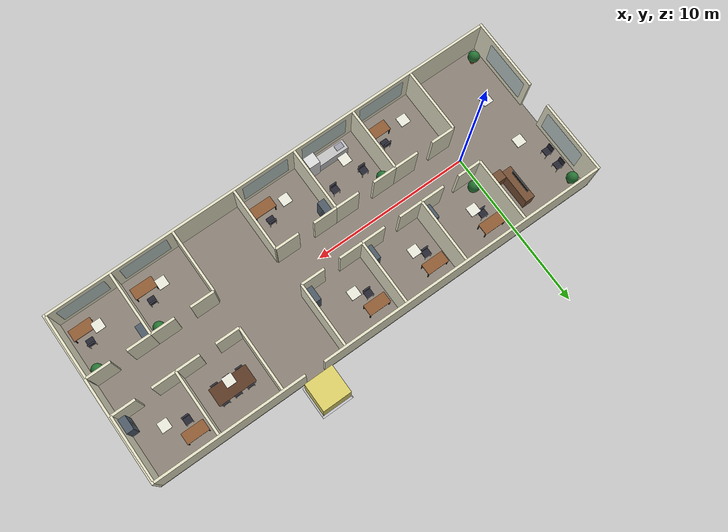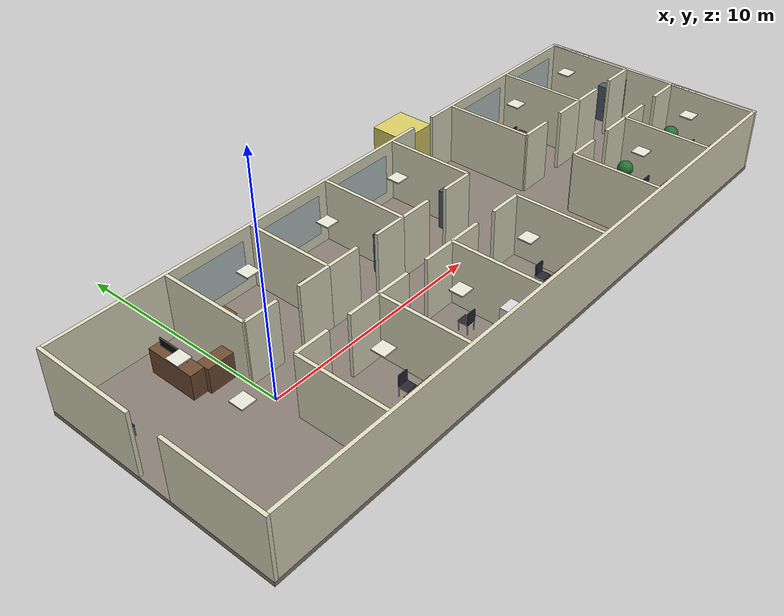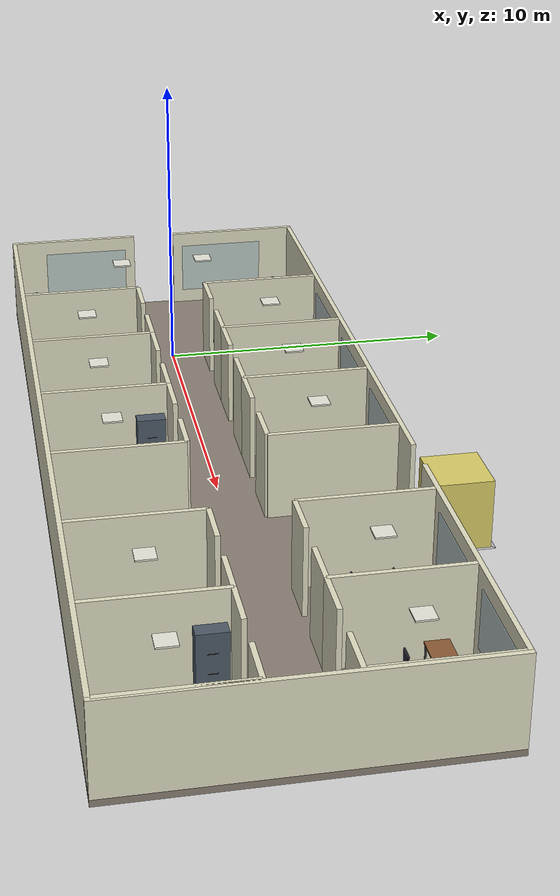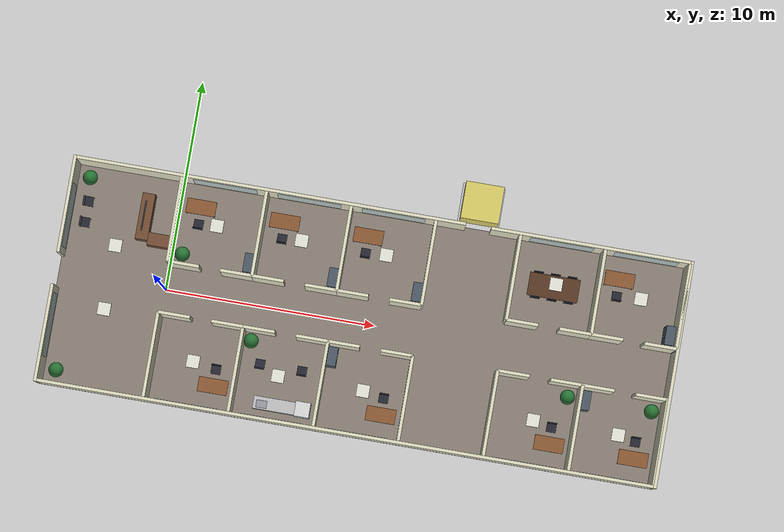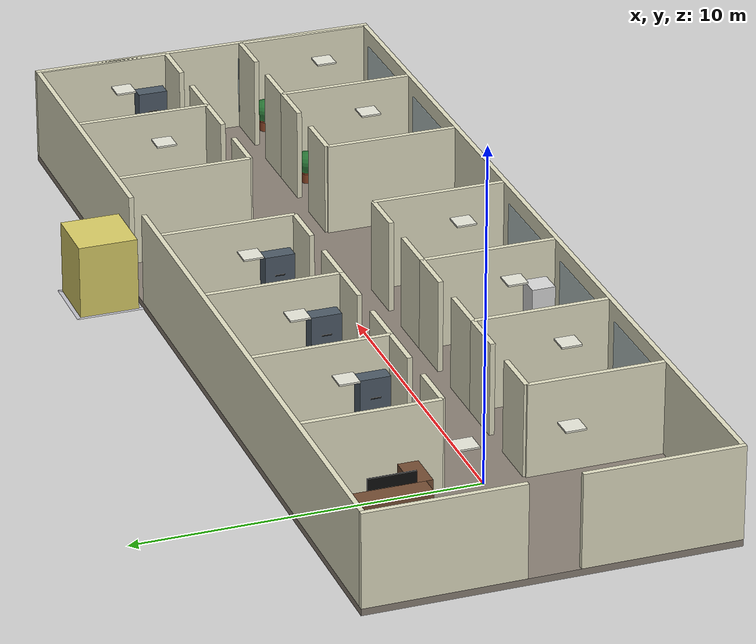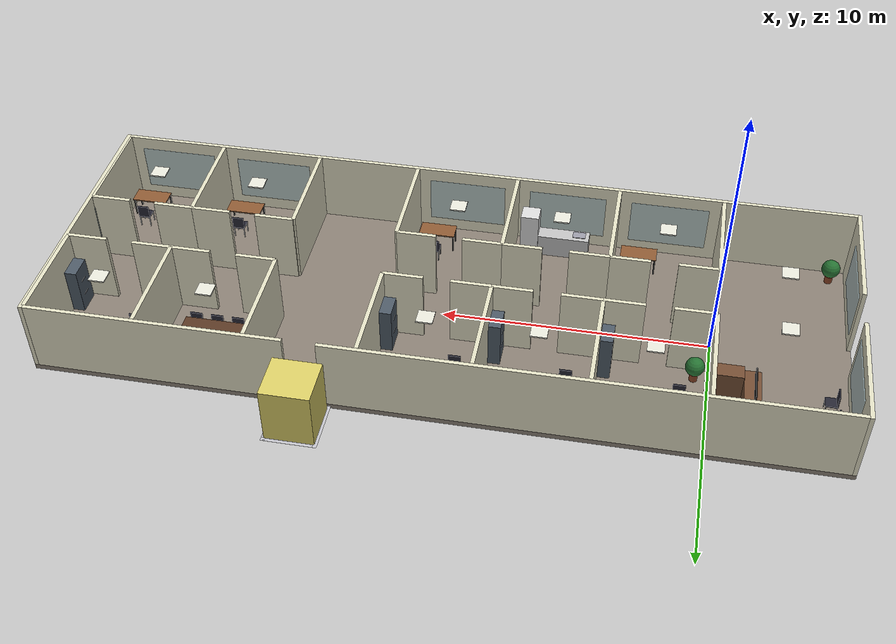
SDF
<?xml version="1.0"?>

<sdf version="1.10">

  <world name="office_world">

    <!-- PHYSICS                                           -->

    <physics name="default_physics" type="ode">

      <max_step_size>0.001</max_step_size>

      <real_time_factor>1.0</real_time_factor>

      <real_time_update_rate>1000</real_time_update_rate>

      <ode>
        <solver>
          <type>quick</type>
          <iters>150</iters>
          <sor>1.3</sor>
        </solver>
        <constraints>
          <cfm>0.0</cfm>
          <erp>0.2</erp>
          <contact_max_correcting_vel>100</contact_max_correcting_vel>
          <contact_surface_layer>0.001</contact_surface_layer>
        </constraints>
      </ode>

    </physics>

    <!-- REQUIRED SYSTEM PLUGINS                            -->

    <plugin
      filename="gz-sim-physics-system"
      name="gz::sim::systems::Physics">
    </plugin>

    <plugin
      filename="gz-sim-scene-broadcaster-system"
      name="gz::sim::systems::SceneBroadcaster">
    </plugin>

    <plugin
      filename="gz-sim-sensors-system"
      name="gz::sim::systems::Sensors">
      <render_engine>ogre2</render_engine>
    </plugin>

    <plugin
      filename="gz-sim-user-commands-system"
      name="gz::sim::systems::UserCommands">
    </plugin>

    <plugin
      filename="gz-sim-contact-system"
      name="gz::sim::systems::Contact">
    </plugin>

    <!-- GRAVITY                                           -->

    <gravity>0 0 -9.81</gravity>

    <!-- SCENE (rendering defaults for realistic look)      -->

    <scene>
      <ambient>0.6 0.6 0.6 1</ambient>
      <background>0.7 0.8 0.9 1</background>
      <shadows>true</shadows>
      <grid>false</grid>
    </scene>

    <!-- OFFICE FLOOR (structure + furniture, all nested)   -->

    <include>

      <uri>model://office_floor</uri>

      <name>office_floor</name>

      <pose>0 0 0 0 0 0</pose>

    </include>

    <!-- SUN (fill light through the windows)               -->

    <light
      name="sun"
      type="directional">

      <cast_shadows>true</cast_shadows>

      <pose>0 0 15 0 0 0</pose>

      <diffuse>1 1 1 1</diffuse>

      <specular>0.2 0.2 0.2 1</specular>

      <direction>-0.4 0.3 -1</direction>

    </light>

  </world>

</sdf>

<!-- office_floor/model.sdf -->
<!-- AUTO-GENERATED by scripts/generator/generate.py — do not hand-edit. -->

<sdf version="1.10">

  <model name="office_floor">

    <static>true</static>

    <link name="structure_link">

      <collision name="floor_0_floor_slab_collision">
        <pose>9.5000 0.0000 -0.1000 0.0000 -0.0000 0.0000</pose>
        <geometry>
          <box>
            <size>29.3000 10.7000 0.2000</size>
          </box>
        </geometry>
      </collision>
      <visual name="floor_0_floor_slab_visual">
        <pose>9.5000 0.0000 -0.1000 0.0000 -0.0000 0.0000</pose>
        <geometry>
          <box>
            <size>29.3000 10.7000 0.2000</size>
          </box>
        </geometry>
        <material>
          <ambient>0.5352970511190146 0.49679077429008417 0.45346837414708774 1</ambient>
          <diffuse>0.5352970511190146 0.49679077429008417 0.45346837414708774 1</diffuse>
          <specular>0.2 0.2 0.2 1</specular>
        </material>
      </visual>
      <collision name="floor_0_ext_wall_north_seg0_collision">
        <pose>4.2000 5.2750 1.4000 0.0000 -0.0000 0.0000</pose>
        <geometry>
          <box>
            <size>18.4000 0.1500 2.8000</size>
          </box>
        </geometry>
      </collision>
      <visual name="floor_0_ext_wall_north_seg0_visual">
        <pose>4.2000 5.2750 1.4000 0.0000 -0.0000 0.0000</pose>
        <geometry>
          <box>
            <size>18.4000 0.1500 2.8000</size>
          </box>
        </geometry>
        <material>
          <ambient>0.8777356642700563 0.866982555955925 0.7599139603924817 1</ambient>
          <diffuse>0.8777356642700563 0.866982555955925 0.7599139603924817 1</diffuse>
          <specular>0.2 0.2 0.2 1</specular>
        </material>
      </visual>
      <collision name="floor_0_ext_wall_north_seg1_collision">
        <pose>19.3000 5.2750 1.4000 0.0000 -0.0000 0.0000</pose>
        <geometry>
          <box>
            <size>9.4000 0.1500 2.8000</size>
          </box>
        </geometry>
      </collision>
      <visual name="floor_0_ext_wall_north_seg1_visual">
        <pose>19.3000 5.2750 1.4000 0.0000 -0.0000 0.0000</pose>
        <geometry>
          <box>
            <size>9.4000 0.1500 2.8000</size>
          </box>
        </geometry>
        <material>
          <ambient>0.8777356642700563 0.866982555955925 0.7599139603924817 1</ambient>
          <diffuse>0.8777356642700563 0.866982555955925 0.7599139603924817 1</diffuse>
          <specular>0.2 0.2 0.2 1</specular>
        </material>
      </visual>
      <visual name="floor_0_ext_wall_north_window_0_visual">
        <pose>2.0000 5.2000 1.4000 0.0000 -0.0000 0.0000</pose>
        <geometry>
          <box>
            <size>3.0000 0.0500 1.8000</size>
          </box>
        </geometry>
        <material>
          <ambient>0.6 0.75 0.85 1</ambient>
          <diffuse>0.6 0.75 0.85 1</diffuse>
          <specular>0.8 0.8 0.8 1</specular>
        </material>
        <transparency>0.5500</transparency>
      </visual>
      <visual name="floor_0_ext_wall_north_window_1_visual">
        <pose>6.0000 5.2000 1.4000 0.0000 -0.0000 0.0000</pose>
        <geometry>
          <box>
            <size>3.0000 0.0500 1.8000</size>
          </box>
        </geometry>
        <material>
          <ambient>0.6 0.75 0.85 1</ambient>
          <diffuse>0.6 0.75 0.85 1</diffuse>
          <specular>0.8 0.8 0.8 1</specular>
        </material>
        <transparency>0.5500</transparency>
      </visual>
      <visual name="floor_0_ext_wall_north_window_2_visual">
        <pose>10.0000 5.2000 1.4000 0.0000 -0.0000 0.0000</pose>
        <geometry>
          <box>
            <size>3.0000 0.0500 1.8000</size>
          </box>
        </geometry>
        <material>
          <ambient>0.6 0.75 0.85 1</ambient>
          <diffuse>0.6 0.75 0.85 1</diffuse>
          <specular>0.8 0.8 0.8 1</specular>
        </material>
        <transparency>0.5500</transparency>
      </visual>
      <visual name="floor_0_ext_wall_north_window_3_visual">
        <pose>18.0000 5.2000 1.4000 0.0000 -0.0000 0.0000</pose>
        <geometry>
          <box>
            <size>3.0000 0.0500 1.8000</size>
          </box>
        </geometry>
        <material>
          <ambient>0.6 0.75 0.85 1</ambient>
          <diffuse>0.6 0.75 0.85 1</diffuse>
          <specular>0.8 0.8 0.8 1</specular>
        </material>
        <transparency>0.5500</transparency>
      </visual>
      <visual name="floor_0_ext_wall_north_window_4_visual">
        <pose>22.0000 5.2000 1.4000 0.0000 -0.0000 0.0000</pose>
        <geometry>
          <box>
            <size>3.0000 0.0500 1.8000</size>
          </box>
        </geometry>
        <material>
          <ambient>0.6 0.75 0.85 1</ambient>
          <diffuse>0.6 0.75 0.85 1</diffuse>
          <specular>0.8 0.8 0.8 1</specular>
        </material>
        <transparency>0.5500</transparency>
      </visual>
      <collision name="floor_0_ext_wall_south_collision">
        <pose>9.5000 -5.2750 1.4000 0.0000 -0.0000 0.0000</pose>
        <geometry>
          <box>
            <size>29.0000 0.1500 2.8000</size>
          </box>
        </geometry>
      </collision>
      <visual name="floor_0_ext_wall_south_visual">
        <pose>9.5000 -5.2750 1.4000 0.0000 -0.0000 0.0000</pose>
        <geometry>
          <box>
            <size>29.0000 0.1500 2.8000</size>
          </box>
        </geometry>
        <material>
          <ambient>0.8777356642700563 0.866982555955925 0.7599139603924817 1</ambient>
          <diffuse>0.8777356642700563 0.866982555955925 0.7599139603924817 1</diffuse>
          <specular>0.2 0.2 0.2 1</specular>
        </material>
      </visual>
      <visual name="floor_0_ext_wall_south_window_0_visual">
        <pose>2.0000 -5.2000 1.4000 0.0000 -0.0000 0.0000</pose>
        <geometry>
          <box>
            <size>3.0000 0.0500 1.8000</size>
          </box>
        </geometry>
        <material>
          <ambient>0.6 0.75 0.85 1</ambient>
          <diffuse>0.6 0.75 0.85 1</diffuse>
          <specular>0.8 0.8 0.8 1</specular>
        </material>
        <transparency>0.5500</transparency>
      </visual>
      <visual name="floor_0_ext_wall_south_window_1_visual">
        <pose>6.0000 -5.2000 1.4000 0.0000 -0.0000 0.0000</pose>
        <geometry>
          <box>
            <size>3.0000 0.0500 1.8000</size>
          </box>
        </geometry>
        <material>
          <ambient>0.6 0.75 0.85 1</ambient>
          <diffuse>0.6 0.75 0.85 1</diffuse>
          <specular>0.8 0.8 0.8 1</specular>
        </material>
        <transparency>0.5500</transparency>
      </visual>
      <visual name="floor_0_ext_wall_south_window_2_visual">
        <pose>10.0000 -5.2000 1.4000 0.0000 -0.0000 0.0000</pose>
        <geometry>
          <box>
            <size>3.0000 0.0500 1.8000</size>
          </box>
        </geometry>
        <material>
          <ambient>0.6 0.75 0.85 1</ambient>
          <diffuse>0.6 0.75 0.85 1</diffuse>
          <specular>0.8 0.8 0.8 1</specular>
        </material>
        <transparency>0.5500</transparency>
      </visual>
      <visual name="floor_0_ext_wall_south_window_3_visual">
        <pose>18.0000 -5.2000 1.4000 0.0000 -0.0000 0.0000</pose>
        <geometry>
          <box>
            <size>3.0000 0.0500 1.8000</size>
          </box>
        </geometry>
        <material>
          <ambient>0.6 0.75 0.85 1</ambient>
          <diffuse>0.6 0.75 0.85 1</diffuse>
          <specular>0.8 0.8 0.8 1</specular>
        </material>
        <transparency>0.5500</transparency>
      </visual>
      <visual name="floor_0_ext_wall_south_window_4_visual">
        <pose>22.0000 -5.2000 1.4000 0.0000 -0.0000 0.0000</pose>
        <geometry>
          <box>
            <size>3.0000 0.0500 1.8000</size>
          </box>
        </geometry>
        <material>
          <ambient>0.6 0.75 0.85 1</ambient>
          <diffuse>0.6 0.75 0.85 1</diffuse>
          <specular>0.8 0.8 0.8 1</specular>
        </material>
        <transparency>0.5500</transparency>
      </visual>
      <collision name="floor_0_ext_wall_west_seg0_collision">
        <pose>-5.0750 -3.0500 1.4000 0.0000 -0.0000 0.0000</pose>
        <geometry>
          <box>
            <size>0.1500 4.6000 2.8000</size>
          </box>
        </geometry>
      </collision>
      <visual name="floor_0_ext_wall_west_seg0_visual">
        <pose>-5.0750 -3.0500 1.4000 0.0000 -0.0000 0.0000</pose>
        <geometry>
          <box>
            <size>0.1500 4.6000 2.8000</size>
          </box>
        </geometry>
        <material>
          <ambient>0.8777356642700563 0.866982555955925 0.7599139603924817 1</ambient>
          <diffuse>0.8777356642700563 0.866982555955925 0.7599139603924817 1</diffuse>
          <specular>0.2 0.2 0.2 1</specular>
        </material>
      </visual>
      <collision name="floor_0_ext_wall_west_seg1_collision">
        <pose>-5.0750 3.0500 1.4000 0.0000 -0.0000 0.0000</pose>
        <geometry>
          <box>
            <size>0.1500 4.6000 2.8000</size>
          </box>
        </geometry>
      </collision>
      <visual name="floor_0_ext_wall_west_seg1_visual">
        <pose>-5.0750 3.0500 1.4000 0.0000 -0.0000 0.0000</pose>
        <geometry>
          <box>
            <size>0.1500 4.6000 2.8000</size>
          </box>
        </geometry>
        <material>
          <ambient>0.8777356642700563 0.866982555955925 0.7599139603924817 1</ambient>
          <diffuse>0.8777356642700563 0.866982555955925 0.7599139603924817 1</diffuse>
          <specular>0.2 0.2 0.2 1</specular>
        </material>
      </visual>
      <visual name="floor_0_ext_wall_west_window_0_visual">
        <pose>-5.0000 2.6000 1.4000 0.0000 -0.0000 0.0000</pose>
        <geometry>
          <box>
            <size>0.0500 3.0000 1.8000</size>
          </box>
        </geometry>
        <material>
          <ambient>0.6 0.75 0.85 1</ambient>
          <diffuse>0.6 0.75 0.85 1</diffuse>
          <specular>0.8 0.8 0.8 1</specular>
        </material>
        <transparency>0.5500</transparency>
      </visual>
      <visual name="floor_0_ext_wall_west_window_1_visual">
        <pose>-5.0000 -2.6000 1.4000 0.0000 -0.0000 0.0000</pose>
        <geometry>
          <box>
            <size>0.0500 3.0000 1.8000</size>
          </box>
        </geometry>
        <material>
          <ambient>0.6 0.75 0.85 1</ambient>
          <diffuse>0.6 0.75 0.85 1</diffuse>
          <specular>0.8 0.8 0.8 1</specular>
        </material>
        <transparency>0.5500</transparency>
      </visual>
      <collision name="floor_0_ext_wall_east_collision">
        <pose>24.0750 0.0000 1.4000 0.0000 -0.0000 0.0000</pose>
        <geometry>
          <box>
            <size>0.1500 10.7000 2.8000</size>
          </box>
        </geometry>
      </collision>
      <visual name="floor_0_ext_wall_east_visual">
        <pose>24.0750 0.0000 1.4000 0.0000 -0.0000 0.0000</pose>
        <geometry>
          <box>
            <size>0.1500 10.7000 2.8000</size>
          </box>
        </geometry>
        <material>
          <ambient>0.8777356642700563 0.866982555955925 0.7599139603924817 1</ambient>
          <diffuse>0.8777356642700563 0.866982555955925 0.7599139603924817 1</diffuse>
          <specular>0.2 0.2 0.2 1</specular>
        </material>
      </visual>
      <visual name="floor_0_ext_wall_east_window_0_visual">
        <pose>24.0000 2.6000 1.4000 0.0000 -0.0000 0.0000</pose>
        <geometry>
          <box>
            <size>0.0500 3.0000 1.8000</size>
          </box>
        </geometry>
        <material>
          <ambient>0.6 0.75 0.85 1</ambient>
          <diffuse>0.6 0.75 0.85 1</diffuse>
          <specular>0.8 0.8 0.8 1</specular>
        </material>
        <transparency>0.5500</transparency>
      </visual>
      <visual name="floor_0_ext_wall_east_window_1_visual">
        <pose>24.0000 -2.6000 1.4000 0.0000 -0.0000 0.0000</pose>
        <geometry>
          <box>
            <size>0.0500 3.0000 1.8000</size>
          </box>
        </geometry>
        <material>
          <ambient>0.6 0.75 0.85 1</ambient>
          <diffuse>0.6 0.75 0.85 1</diffuse>
          <specular>0.8 0.8 0.8 1</specular>
        </material>
        <transparency>0.5500</transparency>
      </visual>
      <collision name="floor_0_corridor_wall_n_0_seg0_collision">
        <pose>0.7500 1.2000 1.4000 0.0000 -0.0000 0.0000</pose>
        <geometry>
          <box>
            <size>1.5000 0.1500 2.8000</size>
          </box>
        </geometry>
      </collision>
      <visual name="floor_0_corridor_wall_n_0_seg0_visual">
        <pose>0.7500 1.2000 1.4000 0.0000 -0.0000 0.0000</pose>
        <geometry>
          <box>
            <size>1.5000 0.1500 2.8000</size>
          </box>
        </geometry>
        <material>
          <ambient>0.8777356642700563 0.866982555955925 0.7599139603924817 1</ambient>
          <diffuse>0.8777356642700563 0.866982555955925 0.7599139603924817 1</diffuse>
          <specular>0.2 0.2 0.2 1</specular>
        </material>
      </visual>
      <collision name="floor_0_corridor_wall_n_0_seg1_collision">
        <pose>3.2500 1.2000 1.4000 0.0000 -0.0000 0.0000</pose>
        <geometry>
          <box>
            <size>1.5000 0.1500 2.8000</size>
          </box>
        </geometry>
      </collision>
      <visual name="floor_0_corridor_wall_n_0_seg1_visual">
        <pose>3.2500 1.2000 1.4000 0.0000 -0.0000 0.0000</pose>
        <geometry>
          <box>
            <size>1.5000 0.1500 2.8000</size>
          </box>
        </geometry>
        <material>
          <ambient>0.8777356642700563 0.866982555955925 0.7599139603924817 1</ambient>
          <diffuse>0.8777356642700563 0.866982555955925 0.7599139603924817 1</diffuse>
          <specular>0.2 0.2 0.2 1</specular>
        </material>
      </visual>
      <collision name="floor_0_corridor_wall_s_0_seg0_collision">
        <pose>0.7500 -1.2000 1.4000 0.0000 -0.0000 0.0000</pose>
        <geometry>
          <box>
            <size>1.5000 0.1500 2.8000</size>
          </box>
        </geometry>
      </collision>
      <visual name="floor_0_corridor_wall_s_0_seg0_visual">
        <pose>0.7500 -1.2000 1.4000 0.0000 -0.0000 0.0000</pose>
        <geometry>
          <box>
            <size>1.5000 0.1500 2.8000</size>
          </box>
        </geometry>
        <material>
          <ambient>0.8777356642700563 0.866982555955925 0.7599139603924817 1</ambient>
          <diffuse>0.8777356642700563 0.866982555955925 0.7599139603924817 1</diffuse>
          <specular>0.2 0.2 0.2 1</specular>
        </material>
      </visual>
      <collision name="floor_0_corridor_wall_s_0_seg1_collision">
        <pose>3.2500 -1.2000 1.4000 0.0000 -0.0000 0.0000</pose>
        <geometry>
          <box>
            <size>1.5000 0.1500 2.8000</size>
          </box>
        </geometry>
      </collision>
      <visual name="floor_0_corridor_wall_s_0_seg1_visual">
        <pose>3.2500 -1.2000 1.4000 0.0000 -0.0000 0.0000</pose>
        <geometry>
          <box>
            <size>1.5000 0.1500 2.8000</size>
          </box>
        </geometry>
        <material>
          <ambient>0.8777356642700563 0.866982555955925 0.7599139603924817 1</ambient>
          <diffuse>0.8777356642700563 0.866982555955925 0.7599139603924817 1</diffuse>
          <specular>0.2 0.2 0.2 1</specular>
        </material>
      </visual>
      <collision name="floor_0_corridor_wall_n_1_seg0_collision">
        <pose>4.7500 1.2000 1.4000 0.0000 -0.0000 0.0000</pose>
        <geometry>
          <box>
            <size>1.5000 0.1500 2.8000</size>
          </box>
        </geometry>
      </collision>
      <visual name="floor_0_corridor_wall_n_1_seg0_visual">
        <pose>4.7500 1.2000 1.4000 0.0000 -0.0000 0.0000</pose>
        <geometry>
          <box>
            <size>1.5000 0.1500 2.8000</size>
          </box>
        </geometry>
        <material>
          <ambient>0.8777356642700563 0.866982555955925 0.7599139603924817 1</ambient>
          <diffuse>0.8777356642700563 0.866982555955925 0.7599139603924817 1</diffuse>
          <specular>0.2 0.2 0.2 1</specular>
        </material>
      </visual>
      <collision name="floor_0_corridor_wall_n_1_seg1_collision">
        <pose>7.2500 1.2000 1.4000 0.0000 -0.0000 0.0000</pose>
        <geometry>
          <box>
            <size>1.5000 0.1500 2.8000</size>
          </box>
        </geometry>
      </collision>
      <visual name="floor_0_corridor_wall_n_1_seg1_visual">
        <pose>7.2500 1.2000 1.4000 0.0000 -0.0000 0.0000</pose>
        <geometry>
          <box>
            <size>1.5000 0.1500 2.8000</size>
          </box>
        </geometry>
        <material>
          <ambient>0.8777356642700563 0.866982555955925 0.7599139603924817 1</ambient>
          <diffuse>0.8777356642700563 0.866982555955925 0.7599139603924817 1</diffuse>
          <specular>0.2 0.2 0.2 1</specular>
        </material>
      </visual>
      <collision name="floor_0_corridor_wall_s_1_seg0_collision">
        <pose>4.7500 -1.2000 1.4000 0.0000 -0.0000 0.0000</pose>
        <geometry>
          <box>
            <size>1.5000 0.1500 2.8000</size>
          </box>
        </geometry>
      </collision>
      <visual name="floor_0_corridor_wall_s_1_seg0_visual">
        <pose>4.7500 -1.2000 1.4000 0.0000 -0.0000 0.0000</pose>
        <geometry>
          <box>
            <size>1.5000 0.1500 2.8000</size>
          </box>
        </geometry>
        <material>
          <ambient>0.8777356642700563 0.866982555955925 0.7599139603924817 1</ambient>
          <diffuse>0.8777356642700563 0.866982555955925 0.7599139603924817 1</diffuse>
          <specular>0.2 0.2 0.2 1</specular>
        </material>
      </visual>
      <collision name="floor_0_corridor_wall_s_1_seg1_collision">
        <pose>7.2500 -1.2000 1.4000 0.0000 -0.0000 0.0000</pose>
        <geometry>
          <box>
            <size>1.5000 0.1500 2.8000</size>
          </box>
        </geometry>
      </collision>
      <visual name="floor_0_corridor_wall_s_1_seg1_visual">
        <pose>7.2500 -1.2000 1.4000 0.0000 -0.0000 0.0000</pose>
        <geometry>
          <box>
            <size>1.5000 0.1500 2.8000</size>
          </box>
        </geometry>
        <material>
          <ambient>0.8777356642700563 0.866982555955925 0.7599139603924817 1</ambient>
          <diffuse>0.8777356642700563 0.866982555955925 0.7599139603924817 1</diffuse>
          <specular>0.2 0.2 0.2 1</specular>
        </material>
      </visual>
      <collision name="floor_0_corridor_wall_n_2_seg0_collision">
        <pose>8.7500 1.2000 1.4000 0.0000 -0.0000 0.0000</pose>
        <geometry>
          <box>
            <size>1.5000 0.1500 2.8000</size>
          </box>
        </geometry>
      </collision>
      <visual name="floor_0_corridor_wall_n_2_seg0_visual">
        <pose>8.7500 1.2000 1.4000 0.0000 -0.0000 0.0000</pose>
        <geometry>
          <box>
            <size>1.5000 0.1500 2.8000</size>
          </box>
        </geometry>
        <material>
          <ambient>0.8777356642700563 0.866982555955925 0.7599139603924817 1</ambient>
          <diffuse>0.8777356642700563 0.866982555955925 0.7599139603924817 1</diffuse>
          <specular>0.2 0.2 0.2 1</specular>
        </material>
      </visual>
      <collision name="floor_0_corridor_wall_n_2_seg1_collision">
        <pose>11.2500 1.2000 1.4000 0.0000 -0.0000 0.0000</pose>
        <geometry>
          <box>
            <size>1.5000 0.1500 2.8000</size>
          </box>
        </geometry>
      </collision>
      <visual name="floor_0_corridor_wall_n_2_seg1_visual">
        <pose>11.2500 1.2000 1.4000 0.0000 -0.0000 0.0000</pose>
        <geometry>
          <box>
            <size>1.5000 0.1500 2.8000</size>
          </box>
        </geometry>
        <material>
          <ambient>0.8777356642700563 0.866982555955925 0.7599139603924817 1</ambient>
          <diffuse>0.8777356642700563 0.866982555955925 0.7599139603924817 1</diffuse>
          <specular>0.2 0.2 0.2 1</specular>
        </material>
      </visual>
      <collision name="floor_0_corridor_wall_s_2_seg0_collision">
        <pose>8.7500 -1.2000 1.4000 0.0000 -0.0000 0.0000</pose>
        <geometry>
          <box>
            <size>1.5000 0.1500 2.8000</size>
          </box>
        </geometry>
      </collision>
      <visual name="floor_0_corridor_wall_s_2_seg0_visual">
        <pose>8.7500 -1.2000 1.4000 0.0000 -0.0000 0.0000</pose>
        <geometry>
          <box>
            <size>1.5000 0.1500 2.8000</size>
          </box>
        </geometry>
        <material>
          <ambient>0.8777356642700563 0.866982555955925 0.7599139603924817 1</ambient>
          <diffuse>0.8777356642700563 0.866982555955925 0.7599139603924817 1</diffuse>
          <specular>0.2 0.2 0.2 1</specular>
        </material>
      </visual>
      <collision name="floor_0_corridor_wall_s_2_seg1_collision">
        <pose>11.2500 -1.2000 1.4000 0.0000 -0.0000 0.0000</pose>
        <geometry>
          <box>
            <size>1.5000 0.1500 2.8000</size>
          </box>
        </geometry>
      </collision>
      <visual name="floor_0_corridor_wall_s_2_seg1_visual">
        <pose>11.2500 -1.2000 1.4000 0.0000 -0.0000 0.0000</pose>
        <geometry>
          <box>
            <size>1.5000 0.1500 2.8000</size>
          </box>
        </geometry>
        <material>
          <ambient>0.8777356642700563 0.866982555955925 0.7599139603924817 1</ambient>
          <diffuse>0.8777356642700563 0.866982555955925 0.7599139603924817 1</diffuse>
          <specular>0.2 0.2 0.2 1</specular>
        </material>
      </visual>
      <collision name="floor_0_corridor_wall_n_4_seg0_collision">
        <pose>16.7500 1.2000 1.4000 0.0000 -0.0000 0.0000</pose>
        <geometry>
          <box>
            <size>1.5000 0.1500 2.8000</size>
          </box>
        </geometry>
      </collision>
      <visual name="floor_0_corridor_wall_n_4_seg0_visual">
        <pose>16.7500 1.2000 1.4000 0.0000 -0.0000 0.0000</pose>
        <geometry>
          <box>
            <size>1.5000 0.1500 2.8000</size>
          </box>
        </geometry>
        <material>
          <ambient>0.8777356642700563 0.866982555955925 0.7599139603924817 1</ambient>
          <diffuse>0.8777356642700563 0.866982555955925 0.7599139603924817 1</diffuse>
          <specular>0.2 0.2 0.2 1</specular>
        </material>
      </visual>
      <collision name="floor_0_corridor_wall_n_4_seg1_collision">
        <pose>19.2500 1.2000 1.4000 0.0000 -0.0000 0.0000</pose>
        <geometry>
          <box>
            <size>1.5000 0.1500 2.8000</size>
          </box>
        </geometry>
      </collision>
      <visual name="floor_0_corridor_wall_n_4_seg1_visual">
        <pose>19.2500 1.2000 1.4000 0.0000 -0.0000 0.0000</pose>
        <geometry>
          <box>
            <size>1.5000 0.1500 2.8000</size>
          </box>
        </geometry>
        <material>
          <ambient>0.8777356642700563 0.866982555955925 0.7599139603924817 1</ambient>
          <diffuse>0.8777356642700563 0.866982555955925 0.7599139603924817 1</diffuse>
          <specular>0.2 0.2 0.2 1</specular>
        </material>
      </visual>
      <collision name="floor_0_corridor_wall_s_4_seg0_collision">
        <pose>16.7500 -1.2000 1.4000 0.0000 -0.0000 0.0000</pose>
        <geometry>
          <box>
            <size>1.5000 0.1500 2.8000</size>
          </box>
        </geometry>
      </collision>
      <visual name="floor_0_corridor_wall_s_4_seg0_visual">
        <pose>16.7500 -1.2000 1.4000 0.0000 -0.0000 0.0000</pose>
        <geometry>
          <box>
            <size>1.5000 0.1500 2.8000</size>
          </box>
        </geometry>
        <material>
          <ambient>0.8777356642700563 0.866982555955925 0.7599139603924817 1</ambient>
          <diffuse>0.8777356642700563 0.866982555955925 0.7599139603924817 1</diffuse>
          <specular>0.2 0.2 0.2 1</specular>
        </material>
      </visual>
      <collision name="floor_0_corridor_wall_s_4_seg1_collision">
        <pose>19.2500 -1.2000 1.4000 0.0000 -0.0000 0.0000</pose>
        <geometry>
          <box>
            <size>1.5000 0.1500 2.8000</size>
          </box>
        </geometry>
      </collision>
      <visual name="floor_0_corridor_wall_s_4_seg1_visual">
        <pose>19.2500 -1.2000 1.4000 0.0000 -0.0000 0.0000</pose>
        <geometry>
          <box>
            <size>1.5000 0.1500 2.8000</size>
          </box>
        </geometry>
        <material>
          <ambient>0.8777356642700563 0.866982555955925 0.7599139603924817 1</ambient>
          <diffuse>0.8777356642700563 0.866982555955925 0.7599139603924817 1</diffuse>
          <specular>0.2 0.2 0.2 1</specular>
        </material>
      </visual>
      <collision name="floor_0_corridor_wall_n_5_seg0_collision">
        <pose>20.7500 1.2000 1.4000 0.0000 -0.0000 0.0000</pose>
        <geometry>
          <box>
            <size>1.5000 0.1500 2.8000</size>
          </box>
        </geometry>
      </collision>
      <visual name="floor_0_corridor_wall_n_5_seg0_visual">
        <pose>20.7500 1.2000 1.4000 0.0000 -0.0000 0.0000</pose>
        <geometry>
          <box>
            <size>1.5000 0.1500 2.8000</size>
          </box>
        </geometry>
        <material>
          <ambient>0.8777356642700563 0.866982555955925 0.7599139603924817 1</ambient>
          <diffuse>0.8777356642700563 0.866982555955925 0.7599139603924817 1</diffuse>
          <specular>0.2 0.2 0.2 1</specular>
        </material>
      </visual>
      <collision name="floor_0_corridor_wall_n_5_seg1_collision">
        <pose>23.2500 1.2000 1.4000 0.0000 -0.0000 0.0000</pose>
        <geometry>
          <box>
            <size>1.5000 0.1500 2.8000</size>
          </box>
        </geometry>
      </collision>
      <visual name="floor_0_corridor_wall_n_5_seg1_visual">
        <pose>23.2500 1.2000 1.4000 0.0000 -0.0000 0.0000</pose>
        <geometry>
          <box>
            <size>1.5000 0.1500 2.8000</size>
          </box>
        </geometry>
        <material>
          <ambient>0.8777356642700563 0.866982555955925 0.7599139603924817 1</ambient>
          <diffuse>0.8777356642700563 0.866982555955925 0.7599139603924817 1</diffuse>
          <specular>0.2 0.2 0.2 1</specular>
        </material>
      </visual>
      <collision name="floor_0_corridor_wall_s_5_seg0_collision">
        <pose>20.7500 -1.2000 1.4000 0.0000 -0.0000 0.0000</pose>
        <geometry>
          <box>
            <size>1.5000 0.1500 2.8000</size>
          </box>
        </geometry>
      </collision>
      <visual name="floor_0_corridor_wall_s_5_seg0_visual">
        <pose>20.7500 -1.2000 1.4000 0.0000 -0.0000 0.0000</pose>
        <geometry>
          <box>
            <size>1.5000 0.1500 2.8000</size>
          </box>
        </geometry>
        <material>
          <ambient>0.8777356642700563 0.866982555955925 0.7599139603924817 1</ambient>
          <diffuse>0.8777356642700563 0.866982555955925 0.7599139603924817 1</diffuse>
          <specular>0.2 0.2 0.2 1</specular>
        </material>
      </visual>
      <collision name="floor_0_corridor_wall_s_5_seg1_collision">
        <pose>23.2500 -1.2000 1.4000 0.0000 -0.0000 0.0000</pose>
        <geometry>
          <box>
            <size>1.5000 0.1500 2.8000</size>
          </box>
        </geometry>
      </collision>
      <visual name="floor_0_corridor_wall_s_5_seg1_visual">
        <pose>23.2500 -1.2000 1.4000 0.0000 -0.0000 0.0000</pose>
        <geometry>
          <box>
            <size>1.5000 0.1500 2.8000</size>
          </box>
        </geometry>
        <material>
          <ambient>0.8777356642700563 0.866982555955925 0.7599139603924817 1</ambient>
          <diffuse>0.8777356642700563 0.866982555955925 0.7599139603924817 1</diffuse>
          <specular>0.2 0.2 0.2 1</specular>
        </material>
      </visual>
      <collision name="floor_0_partition_n_0_collision">
        <pose>0.0000 3.2000 1.4000 0.0000 -0.0000 0.0000</pose>
        <geometry>
          <box>
            <size>0.1500 4.0000 2.8000</size>
          </box>
        </geometry>
      </collision>
      <visual name="floor_0_partition_n_0_visual">
        <pose>0.0000 3.2000 1.4000 0.0000 -0.0000 0.0000</pose>
        <geometry>
          <box>
            <size>0.1500 4.0000 2.8000</size>
          </box>
        </geometry>
        <material>
          <ambient>0.8777356642700563 0.866982555955925 0.7599139603924817 1</ambient>
          <diffuse>0.8777356642700563 0.866982555955925 0.7599139603924817 1</diffuse>
          <specular>0.2 0.2 0.2 1</specular>
        </material>
      </visual>
      <collision name="floor_0_partition_s_0_collision">
        <pose>0.0000 -3.2000 1.4000 0.0000 -0.0000 0.0000</pose>
        <geometry>
          <box>
            <size>0.1500 4.0000 2.8000</size>
          </box>
        </geometry>
      </collision>
      <visual name="floor_0_partition_s_0_visual">
        <pose>0.0000 -3.2000 1.4000 0.0000 -0.0000 0.0000</pose>
        <geometry>
          <box>
            <size>0.1500 4.0000 2.8000</size>
          </box>
        </geometry>
        <material>
          <ambient>0.8777356642700563 0.866982555955925 0.7599139603924817 1</ambient>
          <diffuse>0.8777356642700563 0.866982555955925 0.7599139603924817 1</diffuse>
          <specular>0.2 0.2 0.2 1</specular>
        </material>
      </visual>
      <collision name="floor_0_partition_n_1_collision">
        <pose>4.0000 3.2000 1.4000 0.0000 -0.0000 0.0000</pose>
        <geometry>
          <box>
            <size>0.1500 4.0000 2.8000</size>
          </box>
        </geometry>
      </collision>
      <visual name="floor_0_partition_n_1_visual">
        <pose>4.0000 3.2000 1.4000 0.0000 -0.0000 0.0000</pose>
        <geometry>
          <box>
            <size>0.1500 4.0000 2.8000</size>
          </box>
        </geometry>
        <material>
          <ambient>0.8777356642700563 0.866982555955925 0.7599139603924817 1</ambient>
          <diffuse>0.8777356642700563 0.866982555955925 0.7599139603924817 1</diffuse>
          <specular>0.2 0.2 0.2 1</specular>
        </material>
      </visual>
      <collision name="floor_0_partition_s_1_collision">
        <pose>4.0000 -3.2000 1.4000 0.0000 -0.0000 0.0000</pose>
        <geometry>
          <box>
            <size>0.1500 4.0000 2.8000</size>
          </box>
        </geometry>
      </collision>
      <visual name="floor_0_partition_s_1_visual">
        <pose>4.0000 -3.2000 1.4000 0.0000 -0.0000 0.0000</pose>
        <geometry>
          <box>
            <size>0.1500 4.0000 2.8000</size>
          </box>
        </geometry>
        <material>
          <ambient>0.8777356642700563 0.866982555955925 0.7599139603924817 1</ambient>
          <diffuse>0.8777356642700563 0.866982555955925 0.7599139603924817 1</diffuse>
          <specular>0.2 0.2 0.2 1</specular>
        </material>
      </visual>
      <collision name="floor_0_partition_n_2_collision">
        <pose>8.0000 3.2000 1.4000 0.0000 -0.0000 0.0000</pose>
        <geometry>
          <box>
            <size>0.1500 4.0000 2.8000</size>
          </box>
        </geometry>
      </collision>
      <visual name="floor_0_partition_n_2_visual">
        <pose>8.0000 3.2000 1.4000 0.0000 -0.0000 0.0000</pose>
        <geometry>
          <box>
            <size>0.1500 4.0000 2.8000</size>
          </box>
        </geometry>
        <material>
          <ambient>0.8777356642700563 0.866982555955925 0.7599139603924817 1</ambient>
          <diffuse>0.8777356642700563 0.866982555955925 0.7599139603924817 1</diffuse>
          <specular>0.2 0.2 0.2 1</specular>
        </material>
      </visual>
      <collision name="floor_0_partition_s_2_collision">
        <pose>8.0000 -3.2000 1.4000 0.0000 -0.0000 0.0000</pose>
        <geometry>
          <box>
            <size>0.1500 4.0000 2.8000</size>
          </box>
        </geometry>
      </collision>
      <visual name="floor_0_partition_s_2_visual">
        <pose>8.0000 -3.2000 1.4000 0.0000 -0.0000 0.0000</pose>
        <geometry>
          <box>
            <size>0.1500 4.0000 2.8000</size>
          </box>
        </geometry>
        <material>
          <ambient>0.8777356642700563 0.866982555955925 0.7599139603924817 1</ambient>
          <diffuse>0.8777356642700563 0.866982555955925 0.7599139603924817 1</diffuse>
          <specular>0.2 0.2 0.2 1</specular>
        </material>
      </visual>
      <collision name="floor_0_partition_n_3_collision">
        <pose>12.0000 3.2000 1.4000 0.0000 -0.0000 0.0000</pose>
        <geometry>
          <box>
            <size>0.1500 4.0000 2.8000</size>
          </box>
        </geometry>
      </collision>
      <visual name="floor_0_partition_n_3_visual">
        <pose>12.0000 3.2000 1.4000 0.0000 -0.0000 0.0000</pose>
        <geometry>
          <box>
            <size>0.1500 4.0000 2.8000</size>
          </box>
        </geometry>
        <material>
          <ambient>0.8777356642700563 0.866982555955925 0.7599139603924817 1</ambient>
          <diffuse>0.8777356642700563 0.866982555955925 0.7599139603924817 1</diffuse>
          <specular>0.2 0.2 0.2 1</specular>
        </material>
      </visual>
      <collision name="floor_0_partition_s_3_collision">
        <pose>12.0000 -3.2000 1.4000 0.0000 -0.0000 0.0000</pose>
        <geometry>
          <box>
            <size>0.1500 4.0000 2.8000</size>
          </box>
        </geometry>
      </collision>
      <visual name="floor_0_partition_s_3_visual">
        <pose>12.0000 -3.2000 1.4000 0.0000 -0.0000 0.0000</pose>
        <geometry>
          <box>
            <size>0.1500 4.0000 2.8000</size>
          </box>
        </geometry>
        <material>
          <ambient>0.8777356642700563 0.866982555955925 0.7599139603924817 1</ambient>
          <diffuse>0.8777356642700563 0.866982555955925 0.7599139603924817 1</diffuse>
          <specular>0.2 0.2 0.2 1</specular>
        </material>
      </visual>
      <collision name="floor_0_partition_n_4_collision">
        <pose>16.0000 3.2000 1.4000 0.0000 -0.0000 0.0000</pose>
        <geometry>
          <box>
            <size>0.1500 4.0000 2.8000</size>
          </box>
        </geometry>
      </collision>
      <visual name="floor_0_partition_n_4_visual">
        <pose>16.0000 3.2000 1.4000 0.0000 -0.0000 0.0000</pose>
        <geometry>
          <box>
            <size>0.1500 4.0000 2.8000</size>
          </box>
        </geometry>
        <material>
          <ambient>0.8777356642700563 0.866982555955925 0.7599139603924817 1</ambient>
          <diffuse>0.8777356642700563 0.866982555955925 0.7599139603924817 1</diffuse>
          <specular>0.2 0.2 0.2 1</specular>
        </material>
      </visual>
      <collision name="floor_0_partition_s_4_collision">
        <pose>16.0000 -3.2000 1.4000 0.0000 -0.0000 0.0000</pose>
        <geometry>
          <box>
            <size>0.1500 4.0000 2.8000</size>
          </box>
        </geometry>
      </collision>
      <visual name="floor_0_partition_s_4_visual">
        <pose>16.0000 -3.2000 1.4000 0.0000 -0.0000 0.0000</pose>
        <geometry>
          <box>
            <size>0.1500 4.0000 2.8000</size>
          </box>
        </geometry>
        <material>
          <ambient>0.8777356642700563 0.866982555955925 0.7599139603924817 1</ambient>
          <diffuse>0.8777356642700563 0.866982555955925 0.7599139603924817 1</diffuse>
          <specular>0.2 0.2 0.2 1</specular>
        </material>
      </visual>
      <collision name="floor_0_partition_n_5_collision">
        <pose>20.0000 3.2000 1.4000 0.0000 -0.0000 0.0000</pose>
        <geometry>
          <box>
            <size>0.1500 4.0000 2.8000</size>
          </box>
        </geometry>
      </collision>
      <visual name="floor_0_partition_n_5_visual">
        <pose>20.0000 3.2000 1.4000 0.0000 -0.0000 0.0000</pose>
        <geometry>
          <box>
            <size>0.1500 4.0000 2.8000</size>
          </box>
        </geometry>
        <material>
          <ambient>0.8777356642700563 0.866982555955925 0.7599139603924817 1</ambient>
          <diffuse>0.8777356642700563 0.866982555955925 0.7599139603924817 1</diffuse>
          <specular>0.2 0.2 0.2 1</specular>
        </material>
      </visual>
      <collision name="floor_0_partition_s_5_collision">
        <pose>20.0000 -3.2000 1.4000 0.0000 -0.0000 0.0000</pose>
        <geometry>
          <box>
            <size>0.1500 4.0000 2.8000</size>
          </box>
        </geometry>
      </collision>
      <visual name="floor_0_partition_s_5_visual">
        <pose>20.0000 -3.2000 1.4000 0.0000 -0.0000 0.0000</pose>
        <geometry>
          <box>
            <size>0.1500 4.0000 2.8000</size>
          </box>
        </geometry>
        <material>
          <ambient>0.8777356642700563 0.866982555955925 0.7599139603924817 1</ambient>
          <diffuse>0.8777356642700563 0.866982555955925 0.7599139603924817 1</diffuse>
          <specular>0.2 0.2 0.2 1</specular>
        </material>
      </visual>
      <collision name="floor_0_partition_n_6_collision">
        <pose>24.0000 3.2000 1.4000 0.0000 -0.0000 0.0000</pose>
        <geometry>
          <box>
            <size>0.1500 4.0000 2.8000</size>
          </box>
        </geometry>
      </collision>
      <visual name="floor_0_partition_n_6_visual">
        <pose>24.0000 3.2000 1.4000 0.0000 -0.0000 0.0000</pose>
        <geometry>
          <box>
            <size>0.1500 4.0000 2.8000</size>
          </box>
        </geometry>
        <material>
          <ambient>0.8777356642700563 0.866982555955925 0.7599139603924817 1</ambient>
          <diffuse>0.8777356642700563 0.866982555955925 0.7599139603924817 1</diffuse>
          <specular>0.2 0.2 0.2 1</specular>
        </material>
      </visual>
      <collision name="floor_0_partition_s_6_collision">
        <pose>24.0000 -3.2000 1.4000 0.0000 -0.0000 0.0000</pose>
        <geometry>
          <box>
            <size>0.1500 4.0000 2.8000</size>
          </box>
        </geometry>
      </collision>
      <visual name="floor_0_partition_s_6_visual">
        <pose>24.0000 -3.2000 1.4000 0.0000 -0.0000 0.0000</pose>
        <geometry>
          <box>
            <size>0.1500 4.0000 2.8000</size>
          </box>
        </geometry>
        <material>
          <ambient>0.8777356642700563 0.866982555955925 0.7599139603924817 1</ambient>
          <diffuse>0.8777356642700563 0.866982555955925 0.7599139603924817 1</diffuse>
          <specular>0.2 0.2 0.2 1</specular>
        </material>
      </visual>
      <collision name="floor_0_elevator_wall_back_collision">
        <pose>14.0000 7.3750 0.0000 0.0000 -0.0000 0.0000</pose>
        <geometry>
          <box>
            <size>2.0000 0.1500 0.0000</size>
          </box>
        </geometry>
      </collision>
      <visual name="floor_0_elevator_wall_back_visual">
        <pose>14.0000 7.3750 0.0000 0.0000 -0.0000 0.0000</pose>
        <geometry>
          <box>
            <size>2.0000 0.1500 0.0000</size>
          </box>
        </geometry>
        <material>
          <ambient>0.75 0.75 0.78 1</ambient>
          <diffuse>0.75 0.75 0.78 1</diffuse>
          <specular>0.2 0.2 0.2 1</specular>
        </material>
      </visual>
      <collision name="floor_0_elevator_wall_left_collision">
        <pose>13.0750 6.4500 0.0000 0.0000 -0.0000 0.0000</pose>
        <geometry>
          <box>
            <size>0.1500 2.0000 0.0000</size>
          </box>
        </geometry>
      </collision>
      <visual name="floor_0_elevator_wall_left_visual">
        <pose>13.0750 6.4500 0.0000 0.0000 -0.0000 0.0000</pose>
        <geometry>
          <box>
            <size>0.1500 2.0000 0.0000</size>
          </box>
        </geometry>
        <material>
          <ambient>0.75 0.75 0.78 1</ambient>
          <diffuse>0.75 0.75 0.78 1</diffuse>
          <specular>0.2 0.2 0.2 1</specular>
        </material>
      </visual>
      <collision name="floor_0_elevator_wall_right_collision">
        <pose>14.9250 6.4500 0.0000 0.0000 -0.0000 0.0000</pose>
        <geometry>
          <box>
            <size>0.1500 2.0000 0.0000</size>
          </box>
        </geometry>
      </collision>
      <visual name="floor_0_elevator_wall_right_visual">
        <pose>14.9250 6.4500 0.0000 0.0000 -0.0000 0.0000</pose>
        <geometry>
          <box>
            <size>0.1500 2.0000 0.0000</size>
          </box>
        </geometry>
        <material>
          <ambient>0.75 0.75 0.78 1</ambient>
          <diffuse>0.75 0.75 0.78 1</diffuse>
          <specular>0.2 0.2 0.2 1</specular>
        </material>
      </visual>
      <collision name="floor_0_elevator_cabin_collision">
        <pose>14.0000 6.4500 1.1000 0.0000 -0.0000 0.0000</pose>
        <geometry>
          <box>
            <size>1.8000 1.7500 2.2000</size>
          </box>
        </geometry>
      </collision>
      <visual name="floor_0_elevator_cabin_visual">
        <pose>14.0000 6.4500 1.1000 0.0000 -0.0000 0.0000</pose>
        <geometry>
          <box>
            <size>1.8000 1.7500 2.2000</size>
          </box>
        </geometry>
        <material>
          <ambient>0.85 0.8 0.4 1</ambient>
          <diffuse>0.85 0.8 0.4 1</diffuse>
          <specular>0.2 0.2 0.2 1</specular>
        </material>
      </visual>
    </link>

    <include>
      <uri>model://office_desk</uri>
      <name>floor_0_office_n_0_desk</name>
      <pose>1.0000 4.1000 0.0000 0.0000 -0.0000 0.0000</pose>
    </include>
    <include>
      <uri>model://office_chair</uri>
      <name>floor_0_office_n_0_chair</name>
      <pose>1.0000 3.3000 0.0000 0.0000 -0.0000 0.0000</pose>
    </include>
    <include>
      <uri>model://office_cabinet</uri>
      <name>floor_0_office_n_0_cabinet</name>
      <pose>3.9250 1.8250 0.0000 0.0000 -0.0000 -1.5708</pose>
    </include>
    <include>
      <uri>model://ceiling_light</uri>
      <name>floor_0_office_n_0_light</name>
      <pose>2.0000 3.2000 2.7500 0.0000 -0.0000 0.0000</pose>
    </include>
    <include>
      <uri>model://potted_plant</uri>
      <name>floor_0_office_n_0_plant</name>
      <pose>0.5000 1.7750 0.0000 0.0000 -0.0000 0.0000</pose>
    </include>
    <include>
      <uri>model://office_desk</uri>
      <name>floor_0_office_s_0_desk</name>
      <pose>3.0000 -4.1000 0.0000 0.0000 -0.0000 -3.1416</pose>
    </include>
    <include>
      <uri>model://office_chair</uri>
      <name>floor_0_office_s_0_chair</name>
      <pose>3.0000 -3.3000 0.0000 0.0000 -0.0000 -3.1416</pose>
    </include>
    <include>
      <uri>model://ceiling_light</uri>
      <name>floor_0_office_s_0_light</name>
      <pose>2.0000 -3.2000 2.7500 0.0000 -0.0000 -3.1416</pose>
    </include>
    <include>
      <uri>model://office_desk</uri>
      <name>floor_0_office_n_1_desk</name>
      <pose>5.0000 4.1000 0.0000 0.0000 -0.0000 0.0000</pose>
    </include>
    <include>
      <uri>model://office_chair</uri>
      <name>floor_0_office_n_1_chair</name>
      <pose>5.0000 3.3000 0.0000 0.0000 -0.0000 0.0000</pose>
    </include>
    <include>
      <uri>model://office_cabinet</uri>
      <name>floor_0_office_n_1_cabinet</name>
      <pose>7.9250 1.8250 0.0000 0.0000 -0.0000 -1.5708</pose>
    </include>
    <include>
      <uri>model://ceiling_light</uri>
      <name>floor_0_office_n_1_light</name>
      <pose>6.0000 3.2000 2.7500 0.0000 -0.0000 0.0000</pose>
    </include>
    <include>
      <uri>model://break_counter</uri>
      <name>floor_0_break_room_counter</name>
      <pose>6.0000 -4.5000 0.0000 0.0000 -0.0000 -3.1416</pose>
    </include>
    <include>
      <uri>model://office_chair</uri>
      <name>floor_0_break_room_chair_0</name>
      <pose>7.0000 -2.7000 0.0000 0.0000 -0.0000 0.0000</pose>
    </include>
    <include>
      <uri>model://office_chair</uri>
      <name>floor_0_break_room_chair_1</name>
      <pose>5.0000 -2.7000 0.0000 0.0000 -0.0000 0.0000</pose>
    </include>
    <include>
      <uri>model://potted_plant</uri>
      <name>floor_0_break_room_plant</name>
      <pose>4.4000 -1.7000 0.0000 0.0000 -0.0000 -3.1416</pose>
    </include>
    <include>
      <uri>model://ceiling_light</uri>
      <name>floor_0_break_room_light</name>
      <pose>6.0000 -3.2000 2.7500 0.0000 -0.0000 -3.1416</pose>
    </include>
    <include>
      <uri>model://office_desk</uri>
      <name>floor_0_office_n_2_desk</name>
      <pose>9.0000 4.1000 0.0000 0.0000 -0.0000 0.0000</pose>
    </include>
    <include>
      <uri>model://office_chair</uri>
      <name>floor_0_office_n_2_chair</name>
      <pose>9.0000 3.3000 0.0000 0.0000 -0.0000 0.0000</pose>
    </include>
    <include>
      <uri>model://office_cabinet</uri>
      <name>floor_0_office_n_2_cabinet</name>
      <pose>11.9250 1.8250 0.0000 0.0000 -0.0000 -1.5708</pose>
    </include>
    <include>
      <uri>model://ceiling_light</uri>
      <name>floor_0_office_n_2_light</name>
      <pose>10.0000 3.2000 2.7500 0.0000 -0.0000 0.0000</pose>
    </include>
    <include>
      <uri>model://office_desk</uri>
      <name>floor_0_office_s_2_desk</name>
      <pose>11.0000 -4.1000 0.0000 0.0000 -0.0000 -3.1416</pose>
    </include>
    <include>
      <uri>model://office_chair</uri>
      <name>floor_0_office_s_2_chair</name>
      <pose>11.0000 -3.3000 0.0000 0.0000 -0.0000 -3.1416</pose>
    </include>
    <include>
      <uri>model://office_cabinet</uri>
      <name>floor_0_office_s_2_cabinet</name>
      <pose>8.0750 -1.8250 0.0000 0.0000 -0.0000 1.5708</pose>
    </include>
    <include>
      <uri>model://ceiling_light</uri>
      <name>floor_0_office_s_2_light</name>
      <pose>10.0000 -3.2000 2.7500 0.0000 -0.0000 -3.1416</pose>
    </include>
    <include>
      <uri>model://meeting_table</uri>
      <name>floor_0_meeting_room_table</name>
      <pose>18.0000 3.2000 0.0000 0.0000 -0.0000 0.0000</pose>
    </include>
    <include>
      <uri>model://office_chair</uri>
      <name>floor_0_meeting_room_chair_0</name>
      <pose>17.2000 3.6000 0.0000 0.0000 -0.0000 3.1416</pose>
    </include>
    <include>
      <uri>model://office_chair</uri>
      <name>floor_0_meeting_room_chair_1</name>
      <pose>18.0000 3.6000 0.0000 0.0000 -0.0000 3.1416</pose>
    </include>
    <include>
      <uri>model://office_chair</uri>
      <name>floor_0_meeting_room_chair_2</name>
      <pose>18.8000 3.6000 0.0000 0.0000 -0.0000 3.1416</pose>
    </include>
    <include>
      <uri>model://office_chair</uri>
      <name>floor_0_meeting_room_chair_3</name>
      <pose>17.2000 2.8000 0.0000 0.0000 -0.0000 0.0000</pose>
    </include>
    <include>
      <uri>model://office_chair</uri>
      <name>floor_0_meeting_room_chair_4</name>
      <pose>18.0000 2.8000 0.0000 0.0000 -0.0000 0.0000</pose>
    </include>
    <include>
      <uri>model://office_chair</uri>
      <name>floor_0_meeting_room_chair_5</name>
      <pose>18.8000 2.8000 0.0000 0.0000 -0.0000 0.0000</pose>
    </include>
    <include>
      <uri>model://ceiling_light</uri>
      <name>floor_0_meeting_room_light</name>
      <pose>18.0000 3.2000 2.7500 0.0000 -0.0000 0.0000</pose>
    </include>
    <include>
      <uri>model://office_desk</uri>
      <name>floor_0_office_s_4_desk</name>
      <pose>19.0000 -4.1000 0.0000 0.0000 -0.0000 -3.1416</pose>
    </include>
    <include>
      <uri>model://office_chair</uri>
      <name>floor_0_office_s_4_chair</name>
      <pose>19.0000 -3.3000 0.0000 0.0000 -0.0000 -3.1416</pose>
    </include>
    <include>
      <uri>model://ceiling_light</uri>
      <name>floor_0_office_s_4_light</name>
      <pose>18.0000 -3.2000 2.7500 0.0000 -0.0000 -3.1416</pose>
    </include>
    <include>
      <uri>model://potted_plant</uri>
      <name>floor_0_office_s_4_plant</name>
      <pose>19.5000 -1.7750 0.0000 0.0000 -0.0000 -3.1416</pose>
    </include>
    <include>
      <uri>model://office_desk</uri>
      <name>floor_0_office_n_5_desk</name>
      <pose>21.0000 4.1000 0.0000 0.0000 -0.0000 0.0000</pose>
    </include>
    <include>
      <uri>model://office_chair</uri>
      <name>floor_0_office_n_5_chair</name>
      <pose>21.0000 3.3000 0.0000 0.0000 -0.0000 0.0000</pose>
    </include>
    <include>
      <uri>model://office_cabinet</uri>
      <name>floor_0_office_n_5_cabinet</name>
      <pose>23.9250 1.8250 0.0000 0.0000 -0.0000 -1.5708</pose>
    </include>
    <include>
      <uri>model://ceiling_light</uri>
      <name>floor_0_office_n_5_light</name>
      <pose>22.0000 3.2000 2.7500 0.0000 -0.0000 0.0000</pose>
    </include>
    <include>
      <uri>model://office_desk</uri>
      <name>floor_0_office_s_5_desk</name>
      <pose>23.0000 -4.1000 0.0000 0.0000 -0.0000 -3.1416</pose>
    </include>
    <include>
      <uri>model://office_chair</uri>
      <name>floor_0_office_s_5_chair</name>
      <pose>23.0000 -3.3000 0.0000 0.0000 -0.0000 -3.1416</pose>
    </include>
    <include>
      <uri>model://office_cabinet</uri>
      <name>floor_0_office_s_5_cabinet</name>
      <pose>20.0750 -1.8250 0.0000 0.0000 -0.0000 1.5708</pose>
    </include>
    <include>
      <uri>model://ceiling_light</uri>
      <name>floor_0_office_s_5_light</name>
      <pose>22.0000 -3.2000 2.7500 0.0000 -0.0000 -3.1416</pose>
    </include>
    <include>
      <uri>model://potted_plant</uri>
      <name>floor_0_office_s_5_plant</name>
      <pose>23.5000 -1.7750 0.0000 0.0000 -0.0000 -3.1416</pose>
    </include>
    <include>
      <uri>model://reception_desk</uri>
      <name>floor_0_lobby_reception_desk</name>
      <pose>-1.5000 3.2000 0.0000 0.0000 -0.0000 1.5708</pose>
    </include>
    <include>
      <uri>model://office_chair</uri>
      <name>floor_0_lobby_chair_0</name>
      <pose>-4.3000 3.5000 0.0000 0.0000 -0.0000 -1.5708</pose>
    </include>
    <include>
      <uri>model://office_chair</uri>
      <name>floor_0_lobby_chair_1</name>
      <pose>-4.3000 2.5000 0.0000 0.0000 -0.0000 -1.5708</pose>
    </include>
    <include>
      <uri>model://potted_plant</uri>
      <name>floor_0_lobby_plant_0</name>
      <pose>-4.4000 4.6000 0.0000 0.0000 -0.0000 0.0000</pose>
    </include>
    <include>
      <uri>model://potted_plant</uri>
      <name>floor_0_lobby_plant_1</name>
      <pose>-4.4000 -4.6000 0.0000 0.0000 -0.0000 0.0000</pose>
    </include>
    <include>
      <uri>model://ceiling_light</uri>
      <name>floor_0_lobby_light_0</name>
      <pose>-2.5000 1.5000 2.7500 0.0000 -0.0000 0.0000</pose>
    </include>
    <include>
      <uri>model://ceiling_light</uri>
      <name>floor_0_lobby_light_1</name>
      <pose>-2.5000 -1.5000 2.7500 0.0000 -0.0000 0.0000</pose>
    </include>
  </model>

</sdf>

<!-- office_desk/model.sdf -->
<sdf version="1.10">

  <model name="office_desk">

    <static>true</static>

    <link name="desk_link">

      <!-- DESK TOP                    -->

      <collision name="top_collision">

        <pose>0 0 0.72 0 0 0</pose>

        <geometry>
          <box>
            <size>1.4 0.7 0.05</size>
          </box>
        </geometry>

      </collision>

      <visual name="top_visual">

        <pose>0 0 0.72 0 0 0</pose>

        <geometry>
          <box>
            <size>1.4 0.7 0.05</size>
          </box>
        </geometry>

        <material>
          <ambient>0.55 0.35 0.2 1</ambient>
          <diffuse>0.55 0.35 0.2 1</diffuse>
          <specular>0.2 0.2 0.2 1</specular>
        </material>

      </visual>

      <!-- LEG 1                      -->

      <collision name="leg_1_collision">
        <pose>0.65 0.3 0.35 0 0 0</pose>
        <geometry>
          <box>
            <size>0.05 0.05 0.7</size>
          </box>
        </geometry>
      </collision>

      <visual name="leg_1_visual">
        <pose>0.65 0.3 0.35 0 0 0</pose>
        <geometry>
          <box>
            <size>0.05 0.05 0.7</size>
          </box>
        </geometry>
        <material>
          <ambient>0.2 0.2 0.2 1</ambient>
          <diffuse>0.2 0.2 0.2 1</diffuse>
        </material>
      </visual>

      <!-- LEG 2                      -->

      <collision name="leg_2_collision">
        <pose>-0.65 0.3 0.35 0 0 0</pose>
        <geometry>
          <box>
            <size>0.05 0.05 0.7</size>
          </box>
        </geometry>
      </collision>

      <visual name="leg_2_visual">
        <pose>-0.65 0.3 0.35 0 0 0</pose>
        <geometry>
          <box>
            <size>0.05 0.05 0.7</size>
          </box>
        </geometry>
        <material>
          <ambient>0.2 0.2 0.2 1</ambient>
          <diffuse>0.2 0.2 0.2 1</diffuse>
        </material>
      </visual>

      <!-- LEG 3                      -->

      <collision name="leg_3_collision">
        <pose>0.65 -0.3 0.35 0 0 0</pose>
        <geometry>
          <box>
            <size>0.05 0.05 0.7</size>
          </box>
        </geometry>
      </collision>

      <visual name="leg_3_visual">
        <pose>0.65 -0.3 0.35 0 0 0</pose>
        <geometry>
          <box>
            <size>0.05 0.05 0.7</size>
          </box>
        </geometry>
        <material>
          <ambient>0.2 0.2 0.2 1</ambient>
          <diffuse>0.2 0.2 0.2 1</diffuse>
        </material>
      </visual>

      <!-- LEG 4                      -->

      <collision name="leg_4_collision">
        <pose>-0.65 -0.3 0.35 0 0 0</pose>
        <geometry>
          <box>
            <size>0.05 0.05 0.7</size>
          </box>
        </geometry>
      </collision>

      <visual name="leg_4_visual">
        <pose>-0.65 -0.3 0.35 0 0 0</pose>
        <geometry>
          <box>
            <size>0.05 0.05 0.7</size>
          </box>
        </geometry>
        <material>
          <ambient>0.2 0.2 0.2 1</ambient>
          <diffuse>0.2 0.2 0.2 1</diffuse>
        </material>
      </visual>

    </link>

  </model>

</sdf>

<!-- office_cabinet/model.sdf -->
<sdf version="1.10">

  <model name="office_cabinet">

    <static>true</static>

    <link name="cabinet_link">
      <pose>0.0 -0.225 0.0 0 0 0</pose>

      <collision name="body_collision">
        <pose>0 0 0.9 0 0 0</pose>
        <geometry>
          <box>
            <size>0.9 0.45 1.8</size>
          </box>
        </geometry>
      </collision>

      <visual name="body_visual">
        <pose>0 0 0.9 0 0 0</pose>
        <geometry>
          <box>
            <size>0.9 0.45 1.8</size>
          </box>
        </geometry>
        <material>
          <ambient>0.3 0.35 0.4 1</ambient>
          <diffuse>0.3 0.35 0.4 1</diffuse>
          <specular>0.3 0.3 0.3 1</specular>
        </material>
      </visual>

      <!-- Drawer handles, purely cosmetic -->

      <visual name="handle_1_visual">
        <pose>0 -0.225 0.6 0 0 0</pose>
        <geometry>
          <box>
            <size>0.3 0.02 0.04</size>
          </box>
        </geometry>
        <material>
          <ambient>0.05 0.05 0.05 1</ambient>
          <diffuse>0.05 0.05 0.05 1</diffuse>
        </material>
      </visual>

      <visual name="handle_2_visual">
        <pose>0 -0.225 1.2 0 0 0</pose>
        <geometry>
          <box>
            <size>0.3 0.02 0.04</size>
          </box>
        </geometry>
        <material>
          <ambient>0.05 0.05 0.05 1</ambient>
          <diffuse>0.05 0.05 0.05 1</diffuse>
        </material>
      </visual>

    </link>

  </model>

</sdf>
